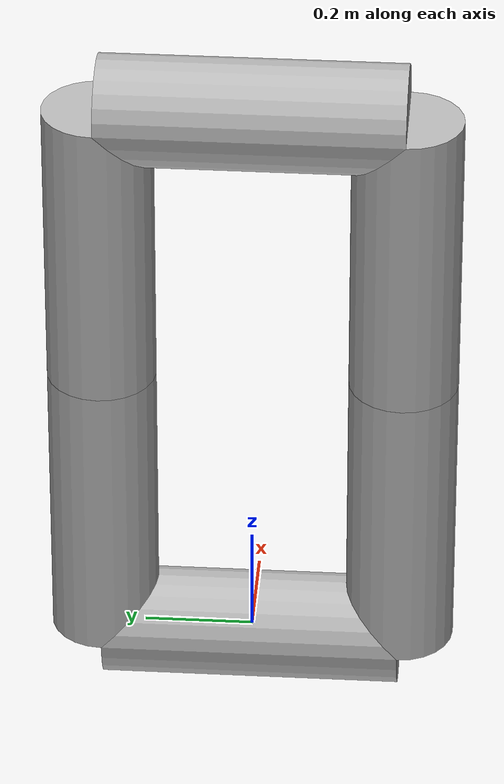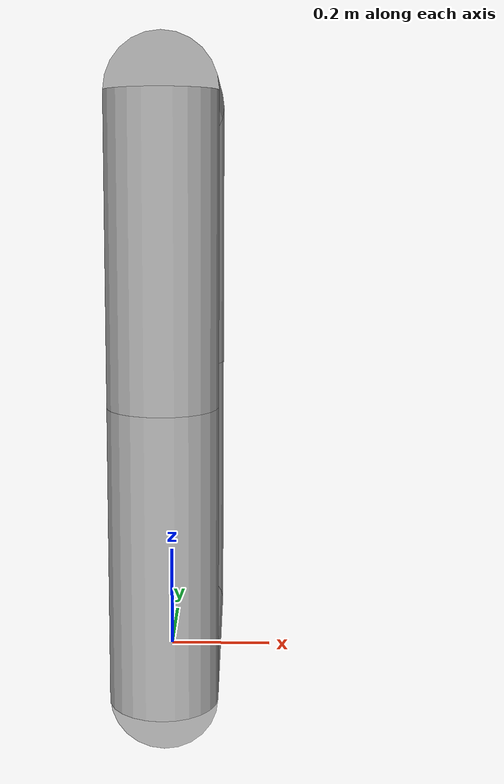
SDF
<sdf version='1.6'>
  <model name='jumping_robot'>
    <link name='l0'>
      <pose frame=''>0 0 0 0 -0 0</pose>
      <inertial>
        <pose frame=''>0 0 0 0 -0 0</pose>
        <mass>0.0001</mass>
        <inertia>
          <ixx>0.0001</ixx>
          <ixy>0</ixy>
          <ixz>0</ixz>
          <iyy>0</iyy>
          <iyz>0</iyz>
          <izz>0.0001</izz>
        </inertia>
      </inertial>
      <visual name="l0_visual">
        <pose frame=''>0 0 0 1.57 0 0</pose>
        <geometry>
          <cylinder>
            <length>0.55</length>
            <radius>0.1</radius>
          </cylinder>
        </geometry>
      </visual>
    </link>
    <link name='l1'>
      <pose frame=''>0 0.275 0 0 -0 0</pose>
      <inertial>
        <pose frame=''>0 0 0.275 0 -0 0</pose>
        <mass>0.31</mass>
        <inertia>
          <ixx>0.007845583333333335</ixx>
          <ixy>0</ixy>
          <ixz>0</ixz>
          <iyy>0.007845583333333335</iyy>
          <iyz>0</iyz>
          <izz>0.0001</izz>
        </inertia>
      </inertial>
      <visual name="l1_visual">
        <pose frame=''>0 0 0.275 0 0 0</pose>
        <geometry>
          <cylinder>
            <length>0.55</length>
            <radius>0.1</radius>
          </cylinder>
        </geometry>
      </visual>
    </link>
    <link name='l2'>
      <pose frame=''>0 0.275 0.55 0 -0 0</pose>
      <inertial>
        <pose frame=''>0 0 0.275 0 -0 0</pose>
        <mass>0.28</mass>
        <inertia>
          <ixx>0.007086333333333334</ixx>
          <ixy>0</ixy>
          <ixz>0</ixz>
          <iyy>0.007086333333333334</iyy>
          <iyz>0</iyz>
          <izz>0.0001</izz>
        </inertia>
      </inertial>
      <visual name="l2_visual">
        <pose frame=''>0 0 0.275 0 0 0</pose>
        <geometry>
          <cylinder>
            <length>0.55</length>
            <radius>0.1</radius>
          </cylinder>
        </geometry>
      </visual>
    </link>
    <link name='l3'>
      <pose frame=''>0 0.275 1.1 1.5707963267948966 -0 0</pose>
      <inertial>
        <pose frame=''>0 0 0.275 0 -0 0</pose>
        <mass>0.54</mass>
        <inertia>
          <ixx>0.013666500000000002</ixx>
          <ixy>0</ixy>
          <ixz>0</ixz>
          <iyy>0.013666500000000002</iyy>
          <iyz>0</iyz>
          <izz>0.0001</izz>
        </inertia>
      </inertial>
      <visual name="l3_visual">
        <pose frame=''>0 0 0.275 0 0 0</pose>
        <geometry>
          <cylinder>
            <length>0.55</length>
            <radius>0.1</radius>
          </cylinder>
        </geometry>
      </visual>
    </link>
    <link name='l4'>
      <pose frame=''>0 -0.275 1.1 3.141592653589793 -0 0</pose>
      <inertial>
        <pose frame=''>0 0 0.275 0 -0 0</pose>
        <mass>0.28</mass>
        <inertia>
          <ixx>0.007086333333333334</ixx>
          <ixy>0</ixy>
          <ixz>0</ixz>
          <iyy>0.007086333333333334</iyy>
          <iyz>0</iyz>
          <izz>0.0001</izz>
        </inertia>
      </inertial>
      <visual name="l4_visual">
        <pose frame=''>0 0 0.275 0 0 0</pose>
        <geometry>
          <cylinder>
            <length>0.55</length>
            <radius>0.1</radius>
          </cylinder>
        </geometry>
      </visual>
    </link>
    <link name='l5'>
      <pose frame=''>0 -0.275 0.55 3.141592653589793 -0 0</pose>
      <inertial>
        <pose frame=''>0 0 0.275 0 -0 0</pose>
        <mass>0.31</mass>
        <inertia>
          <ixx>0.007845583333333335</ixx>
          <ixy>0</ixy>
          <ixz>0</ixz>
          <iyy>0.007845583333333335</iyy>
          <iyz>0</iyz>
          <izz>0.0001</izz>
        </inertia>
      </inertial>
      <visual name="l5_visual">
        <pose frame=''>0 0 0.275 0 0 0</pose>
        <geometry>
          <cylinder>
            <length>0.55</length>
            <radius>0.1</radius>
          </cylinder>
        </geometry>
      </visual>
    </link>
    <joint name='j0' type='revolute'>
      <pose frame=''> 0 0 0 0 0 0</pose>
      <child>l1</child>
      <parent>l0</parent>
      <axis>
        <xyz>1 0 0</xyz>
        <limit>
          <lower>0</lower>
          <upper>0</upper>
          <effort>1000</effort>
          <velocity>0.5</velocity>
        </limit>
        <dynamics>
          <damping>500</damping>
          <friction>0</friction>
          <spring_reference>0</spring_reference>
          <spring_stiffness>0</spring_stiffness>
        </dynamics>
      </axis>
    </joint>
    <joint name='j1' type='revolute'>
      <child>l2</child>
      <parent>l1</parent>
      <axis>
        <xyz>1 0 0</xyz>
        <limit>
          <lower>0</lower>
          <upper>0</upper>
          <effort>1000</effort>
          <velocity>0.5</velocity>
        </limit>
        <dynamics>
          <damping>500</damping>
          <friction>0</friction>
          <spring_reference>0</spring_reference>
          <spring_stiffness>0</spring_stiffness>
        </dynamics>
      </axis>
    </joint>
    <joint name='j2' type='revolute'>
      <child>l3</child>
      <parent>l2</parent>
      <axis>
        <xyz>1 0 0</xyz>
        <limit>
          <lower>-1.57</lower>
          <upper>1.57</upper>
          <effort>1000</effort>
          <velocity>0.5</velocity>
        </limit>
        <dynamics>
          <damping>500</damping>
          <friction>0</friction>
          <spring_reference>0</spring_reference>
          <spring_stiffness>0</spring_stiffness>
        </dynamics>
      </axis>
    </joint>
    <joint name='j3' type='revolute'>
      <child>l4</child>
      <parent>l3</parent>
      <axis>
        <xyz>1 0 0</xyz>
        <limit>
          <lower>-1.57</lower>
          <upper>1.57</upper>
          <effort>1000</effort>
          <velocity>0.5</velocity>
        </limit>
        <dynamics>
          <damping>500</damping>
          <friction>0</friction>
          <spring_reference>0</spring_reference>
          <spring_stiffness>0</spring_stiffness>
        </dynamics>
      </axis>
    </joint>
    <joint name='j4' type='revolute'>
      <child>l5</child>
      <parent>l4</parent>
      <axis>
        <xyz>1 0 0</xyz>
        <limit>
          <lower>-1.57</lower>
          <upper>1.57</upper>
          <effort>1000</effort>
          <velocity>0.5</velocity>
        </limit>
        <dynamics>
          <damping>500</damping>
          <friction>0</friction>
          <spring_reference>0</spring_reference>
          <spring_stiffness>0</spring_stiffness>
        </dynamics>
      </axis>
    </joint>
    <joint name='j5' type='revolute'>
      <pose frame=''> 0 0 0.55 0 0 0</pose>
      <child>l5</child>
      <parent>l0</parent>
      <axis>
        <xyz>-1 0 0</xyz>
        <limit>
          <lower>0</lower>
          <upper>0</upper>
          <effort>1000</effort>
          <velocity>0.5</velocity>
        </limit>
        <dynamics>
          <damping>500</damping>
          <friction>0</friction>
          <spring_reference>0</spring_reference>
          <spring_stiffness>0</spring_stiffness>
        </dynamics>
      </axis>
    </joint>
  </model>
</sdf>
